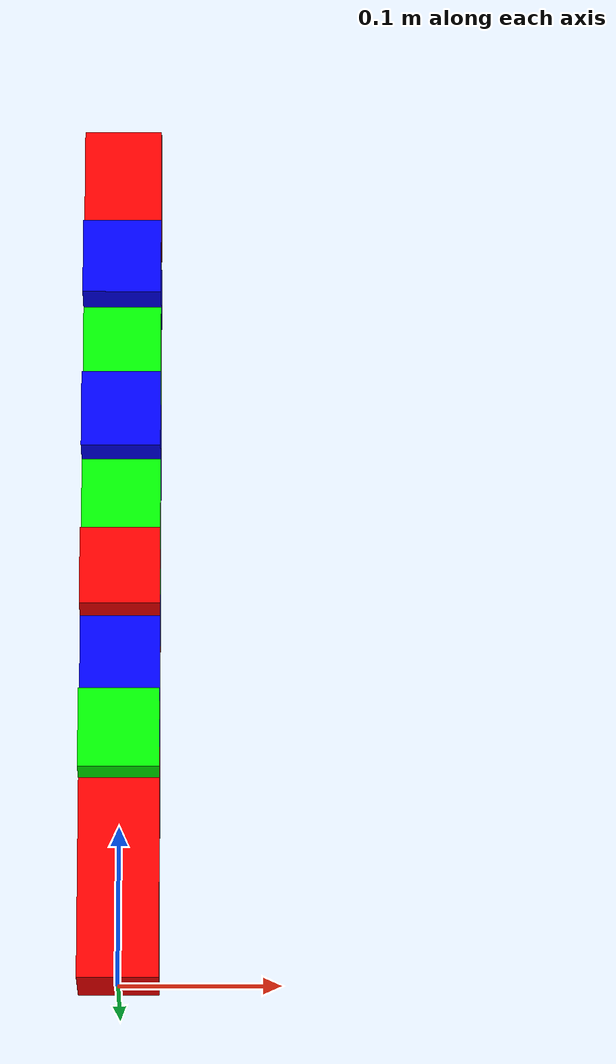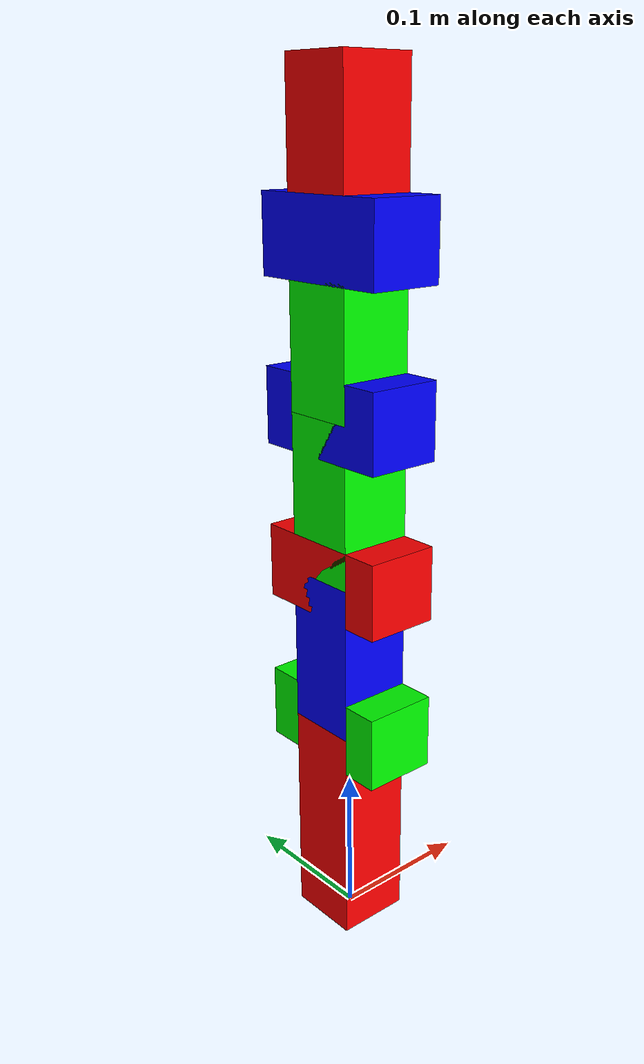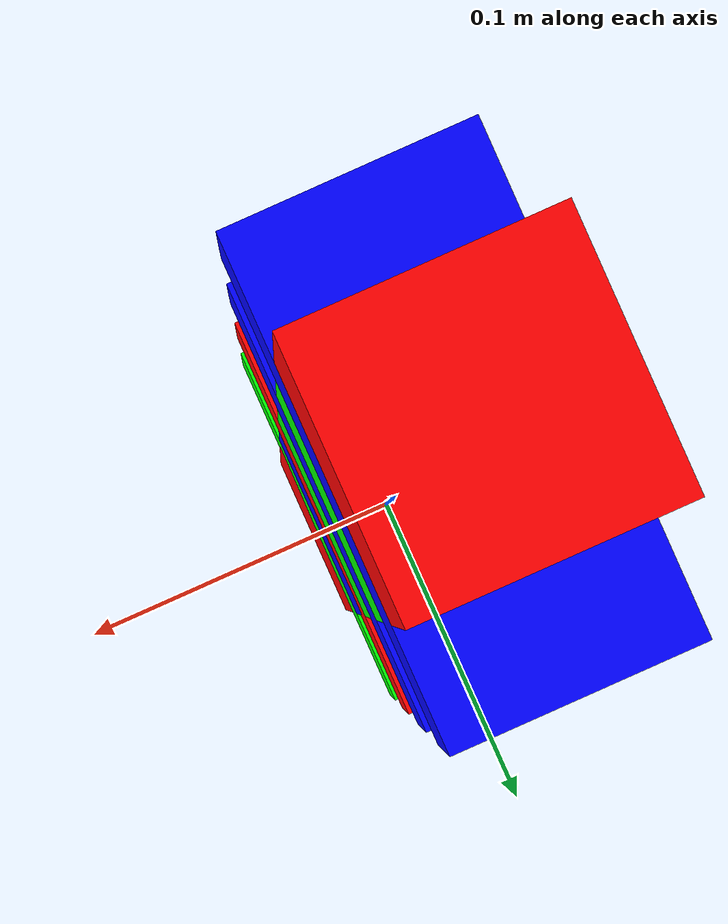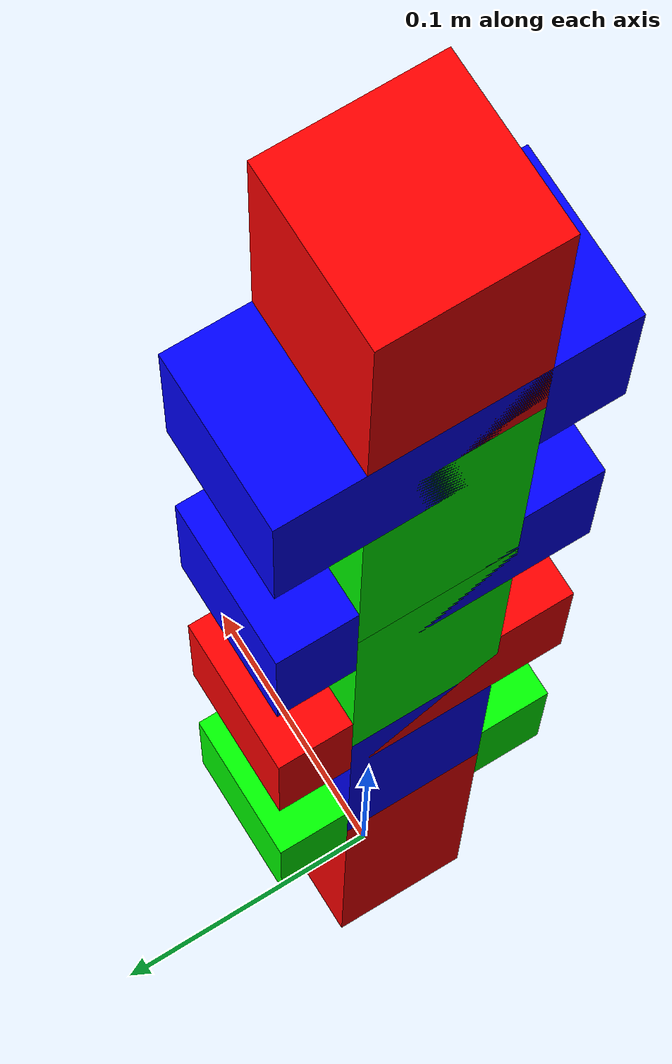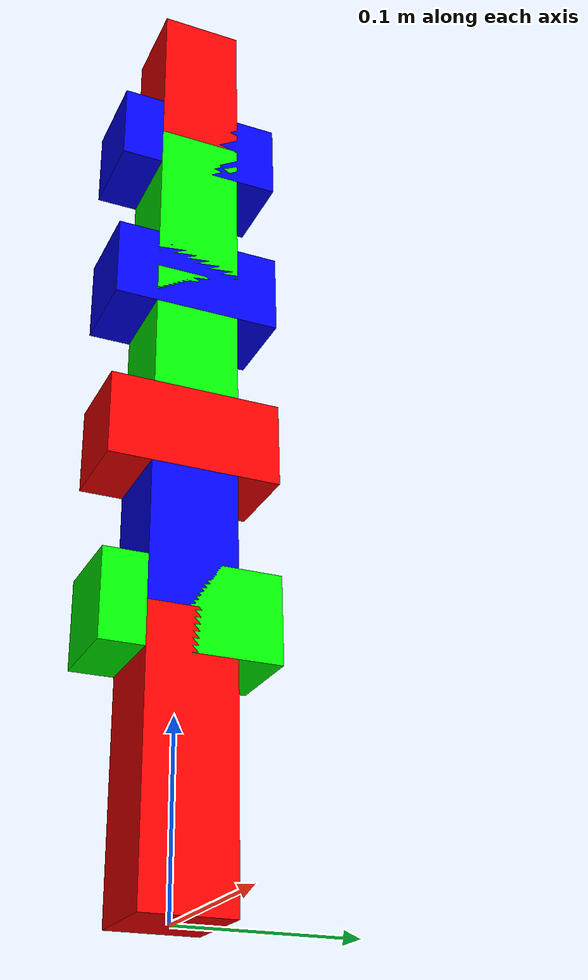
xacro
<?xml version="1.0"?>
<robot name="toyoarm" xmlns:xacro="http://www.ros.org/wiki/xacro">

  <material name="red">
    <color rgba="1.0 0.0 0.0 1.0"/>
  </material>
  <material name="green">
    <color rgba="0.0 1.0 0.0 1.0"/>
  </material>
  <material name="blue">
    <color rgba="0.0 0.0 1.0 1.0"/>
  </material>

  <link name="base_footprint"/>
  <joint name="continuous" type="continuous">
    <parent link="base_footprint"/>
    <child link="base"/>
  </joint>

  <link name="base"/>
  <joint name="fixed" type="fixed">
    <parent link="base"/>
    <child link="link1"/>
  </joint>

  <!-- Link 1 -->
  <link name="link1">
    <collision>
      <origin rpy="0 0 0" xyz="0 0 0.075"/>
      <geometry>
        <box size="0.05 0.05 0.15"/>
      </geometry>
    </collision>
    <visual>
      <origin rpy="0 0 0" xyz="0 0 0.075"/>
      <geometry>
        <box size="0.05 0.05 0.15"/>
      </geometry>
      <material name="red"/>
    </visual>
    <inertial>
      <origin rpy="0 0 0" xyz="0 0 0.075"/>
      <mass value="1"/>
      <inertia ixx="1.0" ixy="0.0" ixz="0.0" iyy="1.0" iyz="0.0" izz="1.0"/>
    </inertial>
  </link>
  <joint name="joint1" type="revolute">
    <parent link="link1"/>
    <child link="link2"/>
    <origin rpy="0 0 0" xyz="0 0 0.15"/>
    <axis xyz="0 0 1"/>
    <limit effort="30" lower="-2.617" upper="2.617" velocity="1.571"/>
  </joint>

  <!-- Link 2 -->
  <link name="link2">
    <collision>
      <origin rpy="0 0 0" xyz="0 0 0.0"/>
      <geometry>
        <box size="0.05 0.1 0.05"/>
      </geometry>
    </collision>
    <visual>
      <origin rpy="0 0 0" xyz="0 0 0.0"/>
      <geometry>
        <box size="0.05 0.1 0.05"/>
      </geometry>
      <material name="green"/>
    </visual>
    <inertial>
      <origin rpy="0 0 0" xyz="0 0 0.0"/>
      <mass value="1"/>
      <inertia ixx="1.0" ixy="0.0" ixz="0.0" iyy="1.0" iyz="0.0" izz="1.0"/>
    </inertial>
  </link>
  <joint name="joint2" type="revolute">
    <parent link="link2"/>
    <child link="link3"/>
    <origin rpy="0 0 0" xyz="0 0 0.0"/>
    <axis xyz="0 1 0"/>
    <limit effort="30" lower="-2.617" upper="2.617" velocity="1.571"/>
  </joint>

  <!-- Link 3 -->
  <link name="link3">
    <collision>
      <origin rpy="0 0 0" xyz="0 0 0.0525"/>
      <geometry>
        <box size="0.05 0.05 0.105"/>
      </geometry>
    </collision>
    <visual>
      <origin rpy="0 0 0" xyz="0 0 0.0525"/>
      <geometry>
        <box size="0.05 0.05 0.105"/>
      </geometry>
      <material name="blue"/>
    </visual>
    <inertial>
      <origin rpy="0 0 0" xyz="0 0 0.0525"/>
      <mass value="1"/>
      <inertia ixx="1.0" ixy="0.0" ixz="0.0" iyy="1.0" iyz="0.0" izz="1.0"/>
    </inertial>
  </link>
  <joint name="joint3" type="revolute">
    <parent link="link3"/>
    <child link="link4"/>
    <origin rpy="0 0 0" xyz="0 0 0.105"/>
    <axis xyz="0 0 1"/>
    <limit effort="30" lower="-2.617" upper="2.617" velocity="1.571"/>
  </joint>

  <!-- Link 4 -->
  <link name="link4">
    <collision>
      <origin rpy="0 0 0" xyz="0 0 0.0"/>
      <geometry>
        <box size="0.1 0.1 1"/>
      </geometry>
    </collision>
    <visual>
      <origin rpy="0 0 0" xyz="0 0 0.0"/>
      <geometry>
        <box size="0.05 0.1 0.05"/>
      </geometry>
      <material name="red"/>
    </visual>
    <inertial>
      <origin rpy="0 0 0" xyz="0 0 0.0"/>
      <mass value="1"/>
      <inertia ixx="1.0" ixy="0.0" ixz="0.0" iyy="1.0" iyz="0.0" izz="1.0"/>
    </inertial>
  </link>
  <joint name="joint4" type="revolute">
    <parent link="link4"/>
    <child link="link5"/>
    <origin rpy="0 0 0" xyz="0 0 0.0"/>
    <axis xyz="0 1 0"/>
    <limit effort="30" lower="-2.617" upper="2.617" velocity="1.571"/>
  </joint>

  <!-- Link 5 -->
  <link name="link5">
    <collision>
      <origin rpy="0 0 0" xyz="0 0 0.0525"/>
      <geometry>
        <box size="0.05 0.05 0.105"/>
      </geometry>
    </collision>
    <visual>
      <origin rpy="0 0 0" xyz="0 0 0.0525"/>
      <geometry>
        <box size="0.05 0.05 0.105"/>
      </geometry>
      <material name="green"/>
    </visual>
    <inertial>
      <origin rpy="0 0 0" xyz="0 0 0.0525"/>
      <mass value="1"/>
      <inertia ixx="1.0" ixy="0.0" ixz="0.0" iyy="1.0" iyz="0.0" izz="1.0"/>
    </inertial>
  </link>
  <joint name="joint5" type="revolute">
    <parent link="link5"/>
    <child link="link6"/>
    <origin rpy="0 0 0" xyz="0 0 0.105"/>
    <axis xyz="0 1 0"/>
    <limit effort="30" lower="-2.617" upper="2.617" velocity="1.571"/>
  </joint>

  <!-- Link 6 -->
  <link name="link6">
    <collision>
      <origin rpy="0 0 0" xyz="0 0 0.0"/>
      <geometry>
        <box size="0.05 0.1 0.05"/>
      </geometry>
    </collision>
    <visual>
      <origin rpy="0 0 0" xyz="0 0 0.0"/>
      <geometry>
        <box size="0.05 0.1 0.05"/>
      </geometry>
      <material name="blue"/>
    </visual>
    <inertial>
      <origin rpy="0 0 0" xyz="0 0 0.0"/>
      <mass value="1"/>
      <inertia ixx="1.0" ixy="0.0" ixz="0.0" iyy="1.0" iyz="0.0" izz="1.0"/>
    </inertial>
  </link>
  <joint name="joint6" type="revolute">
    <parent link="link6"/>
    <child link="link7"/>
    <origin rpy="0 0 0" xyz="0 0 0.0"/>
    <axis xyz="0 0 1"/>
    <limit effort="30" lower="-2.617" upper="2.617" velocity="1.571"/>
  </joint>

  <!-- Link 7 -->
  <link name="link7">
    <collision>
      <origin rpy="0 0 0" xyz="0 0 0.0525"/>
      <geometry>
        <box size="0.05 0.05 0.105"/>
      </geometry>
    </collision>
    <visual>
      <origin rpy="0 0 0" xyz="0 0 0.0525"/>
      <geometry>
        <box size="0.05 0.05 0.105"/>
      </geometry>
      <material name="green"/>
    </visual>
    <inertial>
      <origin rpy="0 0 0" xyz="0 0 0.0525"/>
      <mass value="1"/>
      <inertia ixx="1.0" ixy="0.0" ixz="0.0" iyy="1.0" iyz="0.0" izz="1.0"/>
    </inertial>
  </link>
  <joint name="joint7" type="revolute">
    <parent link="link7"/>
    <child link="link8"/>
    <origin rpy="0 0 0" xyz="0 0 0.105"/>
    <axis xyz="0 1 0"/>
    <limit effort="30" lower="-2.617" upper="2.617" velocity="1.571"/>
  </joint>

  <!-- Link 8 -->
  <link name="link8">
    <collision>
      <origin rpy="0 0 0" xyz="0 0 0.0"/>
      <geometry>
        <box size="0.05 0.1 0.05"/>
      </geometry>
    </collision>
    <visual>
      <origin rpy="0 0 0" xyz="0 0 0.0"/>
      <geometry>
        <box size="0.05 0.1 0.05"/>
      </geometry>
      <material name="blue"/>
    </visual>
    <inertial>
      <origin rpy="0 0 0" xyz="0 0 0.0"/>
      <mass value="1"/>
      <inertia ixx="1.0" ixy="0.0" ixz="0.0" iyy="1.0" iyz="0.0" izz="1.0"/>
    </inertial>
  </link>
  <joint name="joint8" type="revolute">
    <parent link="link8"/>
    <child link="link9"/>
    <origin rpy="0 0 0" xyz="0 0 0.0"/>
    <axis xyz="0 0 1"/>
    <limit effort="30" lower="-2.617" upper="2.617" velocity="1.571"/>
  </joint>

  <!-- Link 9 (end effector)-->
  <link name="link9">
    <collision>
      <origin rpy="0 0 0" xyz="0 0 0.05"/>
      <geometry>
        <box size="0.05 0.05 0.1"/>
      </geometry>
    </collision>
    <visual>
      <origin rpy="0 0 0" xyz="0 0 0.05"/>
      <geometry>
        <box size="0.05 0.05 0.1"/>
      </geometry>
      <material name="red"/>
    </visual>
    <inertial>
      <origin rpy="0 0 0" xyz="0 0 0.05"/>
      <mass value="1"/>
      <inertia ixx="1.0" ixy="0.0" ixz="0.0" iyy="1.0" iyz="0.0" izz="1.0"/>
    </inertial>
  </link>
</robot>
